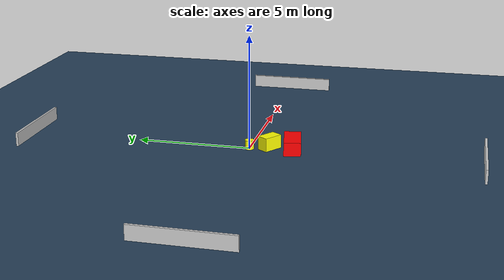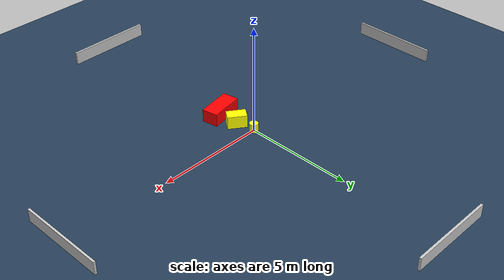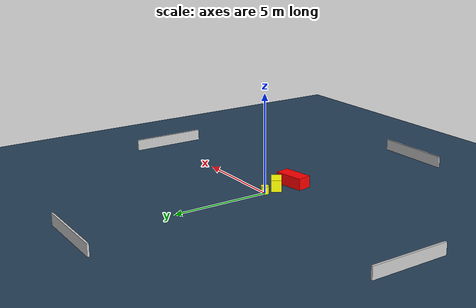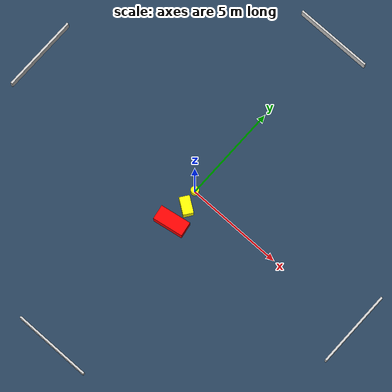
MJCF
<?xml version="1.0" ?>
<mujoco model="generated_environment">
  <option timestep="0.01" integrator="RK4" cone="elliptic"/>
  <default>
    <geom density="1"/>
  </default>
  <asset>
    <texture builtin="gradient" height="3072" name="skybox" rgb1="0.3 0.5 0.7" rgb2="0 0 0" type="skybox" width="512"/>
    <texture builtin="checker" height="300" name="groundplane" rgb1="0.2 0.3 0.4" rgb2="0.1 0.2 0.3" type="2d" width="300"/>
    <material name="groundplane" reflectance="0.2" texrepeat="5 5" texture="groundplane"/>
  </asset>
  <worldbody>
    <light dir="0 0 -1" directional="true" pos="0 0 1.5"/>
    <geom condim="3" friction="0.5 0.005 0.001" material="groundplane" name="floor" pos="0 0 0" size="0 0 0.05" type="plane"/>
    <body name="walls">
      <geom name="wall_1" condim="4" pos="-10.0 0.0 0.3" rgba="0.800000011920929 0.800000011920929 0.800000011920929 1.0" size="0.05 2.0 0.3" type="box"/>
      <geom name="wall_2" condim="4" pos="10.0 0.0 0.3" rgba="0.800000011920929 0.800000011920929 0.800000011920929 1.0" size="0.05 2.0 0.3" type="box"/>
      <geom name="wall_3" condim="4" pos="0.0 -10.0 0.3" rgba="0.800000011920929 0.800000011920929 0.800000011920929 1.0" size="2.0 0.05 0.3" type="box"/>
      <geom name="wall_4" condim="4" pos="0.0 10.0 0.3" rgba="0.800000011920929 0.800000011920929 0.800000011920929 1.0" size="2.0 0.05 0.3" type="box"/>
    </body>
    <body name="robot">
      <joint name="joint_x" type="slide" pos="0 0 0" axis="1 0 0"/>
      <joint name="joint_y" type="slide" pos="0 0 0" axis="0 1 0"/>
      <geom name="robot" type="cylinder" pos="0.0 0.0 0.2" size="0.2 0.2 0.0" mass="5.0" friction="1.0 0.005 0.0001" condim="4" rgba="1.0 1.0 0.0 1.0"/>
    </body>
    <body name="obstacle_1_movable">
      <geom name="obstacle_1_movable" condim="4" pos="0.2131444613898501 -0.8446091199063192 0.3" euler="0 0 235.01420130331363" friction="0.0 0.005 0.001" rgba="1.0 1.0 0.0 1.0" size="0.26004775923890777 0.4424191957589948 0.3" type="box" mass="0.1"/>
      <joint type="free"/>
    </body>
    <body name="obstacle_2_static">
      <geom name="obstacle_2_static" condim="4" pos="0.1958900647992998 -1.8641407869908415 0.3" euler="0 0 9.701556401325139" friction="0.0 0.005 0.001" rgba="1.0 0.0 0.0 1.0" size="0.7900200304356007 0.37233887460851856 0.3" type="box"/>
    </body>
  </worldbody>
  <actuator>
    <motor name="actuator_x" joint="joint_x" gear="1" ctrlrange="-1 1"/>
    <motor name="actuator_y" joint="joint_y" gear="1" ctrlrange="-1 1"/>
  </actuator>
</mujoco>
